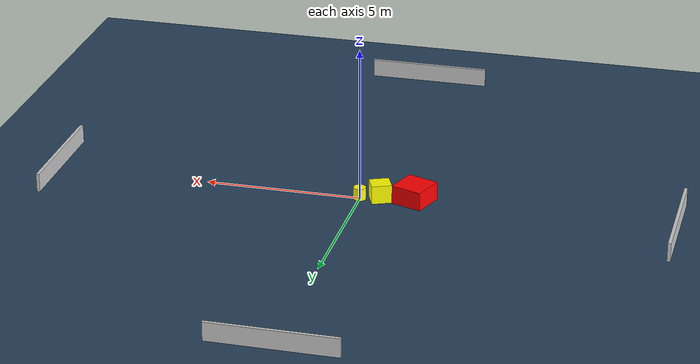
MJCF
<?xml version="1.0" ?>
<mujoco model="generated_environment">
  <option timestep="0.01" integrator="RK4" cone="elliptic"/>
  <default>
    <geom density="1"/>
  </default>
  <asset>
    <texture builtin="gradient" height="3072" name="skybox" rgb1="0.3 0.5 0.7" rgb2="0 0 0" type="skybox" width="512"/>
    <texture builtin="checker" height="300" name="groundplane" rgb1="0.2 0.3 0.4" rgb2="0.1 0.2 0.3" type="2d" width="300"/>
    <material name="groundplane" reflectance="0.2" texrepeat="5 5" texture="groundplane"/>
  </asset>
  <worldbody>
    <light dir="0 0 -1" directional="true" pos="0 0 1.5"/>
    <geom condim="3" friction="0.5 0.005 0.001" material="groundplane" name="floor" pos="0 0 0" size="0 0 0.05" type="plane"/>
    <body name="walls">
      <geom name="wall_1" condim="4" pos="-10.0 0.0 0.3" rgba="0.800000011920929 0.800000011920929 0.800000011920929 1.0" size="0.05 2.0 0.3" type="box"/>
      <geom name="wall_2" condim="4" pos="10.0 0.0 0.3" rgba="0.800000011920929 0.800000011920929 0.800000011920929 1.0" size="0.05 2.0 0.3" type="box"/>
      <geom name="wall_3" condim="4" pos="0.0 -10.0 0.3" rgba="0.800000011920929 0.800000011920929 0.800000011920929 1.0" size="2.0 0.05 0.3" type="box"/>
      <geom name="wall_4" condim="4" pos="0.0 10.0 0.3" rgba="0.800000011920929 0.800000011920929 0.800000011920929 1.0" size="2.0 0.05 0.3" type="box"/>
    </body>
    <body name="robot">
      <joint name="joint_x" type="slide" pos="0 0 0" axis="1 0 0"/>
      <joint name="joint_y" type="slide" pos="0 0 0" axis="0 1 0"/>
      <geom name="robot" type="cylinder" pos="0.0 0.0 0.2" size="0.2 0.2 0.0" mass="5.0" friction="1.0 0.005 0.0001" condim="4" rgba="1.0 1.0 0.0 1.0"/>
    </body>
    <body name="obstacle_1_movable">
      <geom name="obstacle_1_movable" condim="4" pos="-0.6494864706207828 -0.07289342151065159 0.3" euler="0 0 293.12876791488736" friction="0.0 0.005 0.001" rgba="1.0 1.0 0.0 1.0" size="0.2912605255103316 0.32123878421763885 0.3" type="box" mass="0.1"/>
      <joint type="free"/>
    </body>
    <body name="obstacle_2_static">
      <geom name="obstacle_2_static" condim="4" pos="-1.7181869609146718 -0.21895151988858336 0.3" euler="0 0 160.60313109015553" friction="0.0 0.005 0.001" rgba="1.0 0.0 0.0 1.0" size="0.5137039618593066 0.5142641926744951 0.3" type="box"/>
    </body>
  </worldbody>
  <actuator>
    <motor name="actuator_x" joint="joint_x" gear="1" ctrlrange="-1 1"/>
    <motor name="actuator_y" joint="joint_y" gear="1" ctrlrange="-1 1"/>
  </actuator>
</mujoco>
